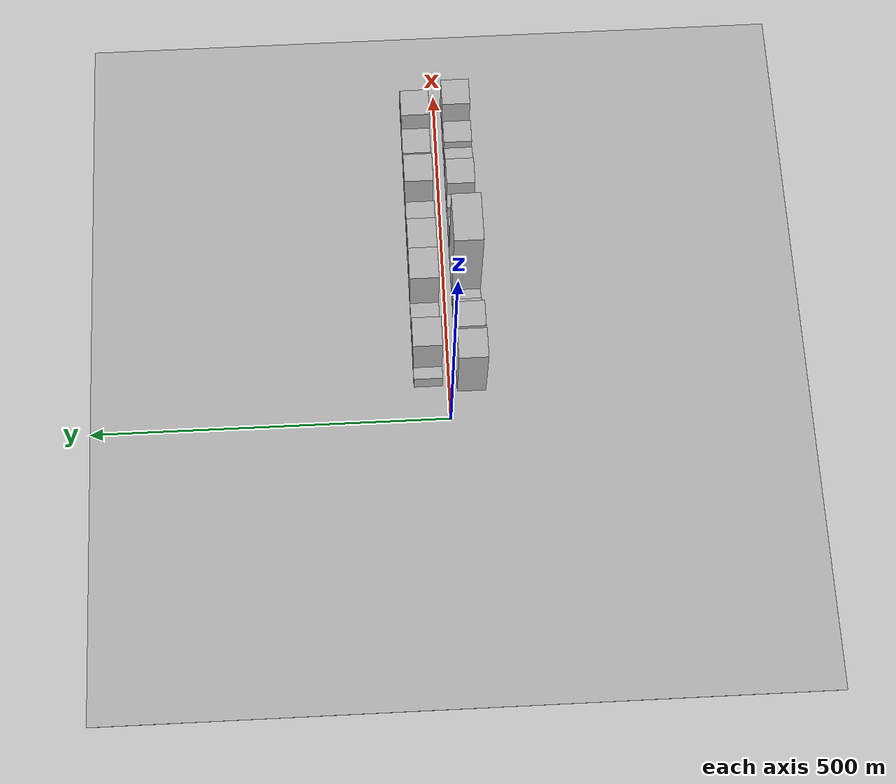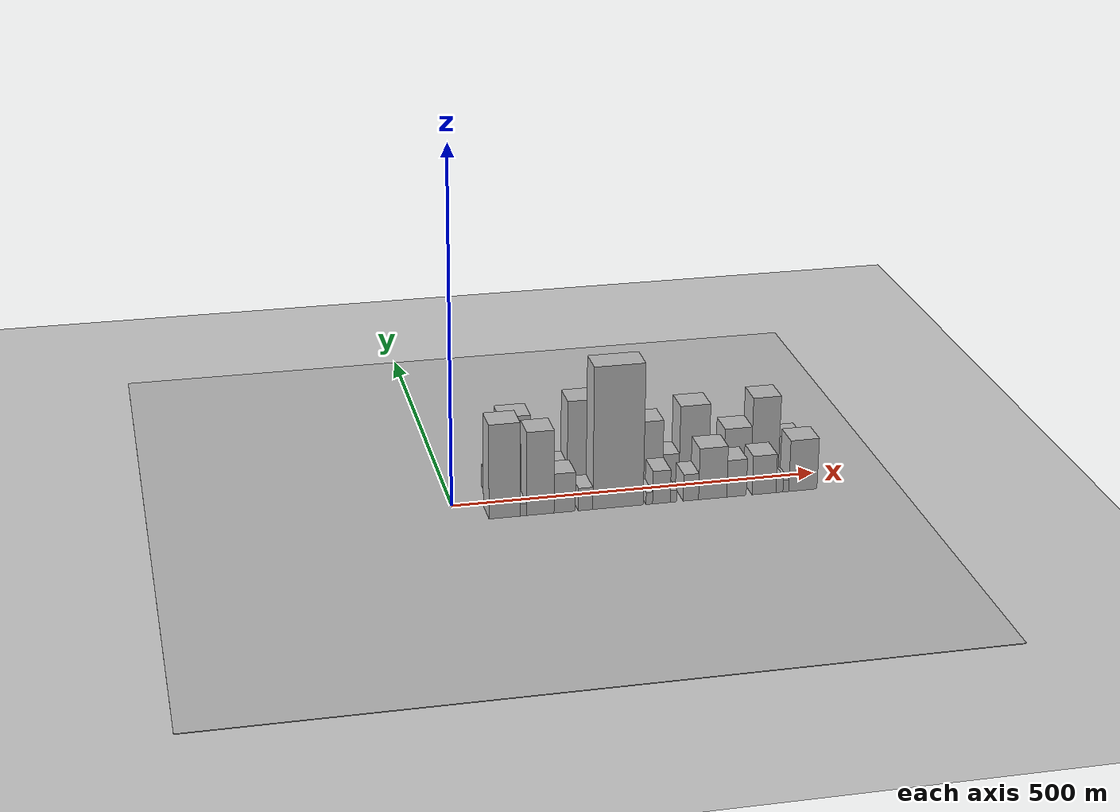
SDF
<?xml version="1.0" encoding="utf-8"?>

<sdf version="1.6">

   <world name="default">

      <gui fullscreen="0">

         <camera name="user_camera">

            <pose>-15 0 4.57585 0 0 0</pose>

            <view_controller>orbit</view_controller>

         </camera>

      </gui>

      <scene>

         <sky>

           <clouds>

             <speed>12</speed>

           </clouds>

         </sky>

         <ambient>0.4 0.4 0.4 1</ambient>

         <background>0.7 0.7 0.7 1</background>

         <shadows>1</shadows>

      </scene>

      <gravity>0 0 -9.8066</gravity>

      <magnetic_field>6e-06 2.3e-05 -4.2e-05</magnetic_field>

      <physics default="0" name="default_physics" type="ode">

         <ode>

            <solver>

               <type>quick</type>

               <iters>10</iters>

               <sor>1.0</sor>

               <use_dynamic_moi_rescaling>0</use_dynamic_moi_rescaling>

            </solver>

            <constraints>

               <cfm>0</cfm>

               <erp>0.2</erp>

               <contact_max_correcting_vel>100</contact_max_correcting_vel>

               <contact_surface_layer>0.001</contact_surface_layer>

            </constraints>

         </ode>

         <max_step_size>0.004</max_step_size>

         <real_time_factor>1</real_time_factor>

         <real_time_update_rate>250</real_time_update_rate>

      </physics>

      <light name="sun" type="directional">

         <cast_shadows>1</cast_shadows>

         <pose>0 0 10 0 0 0</pose>

         <diffuse>0.8 0.8 0.8 1</diffuse>

         <specular>0.2 0.2 0.2 1</specular>

         <attenuation>

            <range>1000</range>

            <constant>0.9</constant>

            <linear>0.01</linear>

            <quadratic>0.001</quadratic>

         </attenuation>

         <direction>-0.5 0.1 -0.9</direction>

      </light>

      <include>

         <name>ground_plane_1</name>

         <uri>model://HANNAS_ground_plane</uri>

         <pose>0 0 0  0 0 0</pose>

      </include>

      <include>

         <name>ground_plane_2</name>

         <uri>model://HANNAS_ground_plane</uri>

         <pose>100 0 0  0 0 0</pose>

      </include>

      <model name="building_1">

         <static>1</static>

         <pose frame="">57.5743 30.0000 0 0.000000 0.000000 1.570796</pose>

         <link name="link">

            <pose frame="">0 0 16.50 0 0 0</pose>

            <collision name="collision">

               <geometry>

                  <box>

                     <size>40.0000 17.1486 33.0000</size>

                  </box>

               </geometry>

               <max_contacts>10</max_contacts>

               <surface>

                  <contact>

                     <ode/>

                  </contact>

                  <bounce/>

                  <friction>

                     <torsional>

                        <ode/>

                     </torsional>

                     <ode/>

                  </friction>

               </surface>

            </collision>

            <visual name="visual">

               <cast_shadows>0</cast_shadows>

               <geometry>

                  <box>

                     <size>40.0000 17.1486 33.0000</size>

                  </box>

               </geometry>

               <material>

                  <script>

                     <uri>model://HANNAS_wall/materials/scripts</uri>

                     <uri>model://HANNAS_wall/materials/textures</uri>

                     <name>vrc/HANNAS_wall</name>

                  </script>

               </material>

            </visual>

            <self_collide>0</self_collide>

            <enable_wind>0</enable_wind>

            <kinematic>0</kinematic>

         </link>

      </model>

      <model name="building_2">

         <static>1</static>

         <pose frame="">86.8567 30.0000 0 0.000000 0.000000 1.570796</pose>

         <link name="link">

            <pose frame="">0 0 58.50 0 0 0</pose>

            <collision name="collision">

               <geometry>

                  <box>

                     <size>40.0000 41.4161 117.0000</size>

                  </box>

               </geometry>

               <max_contacts>10</max_contacts>

               <surface>

                  <contact>

                     <ode/>

                  </contact>

                  <bounce/>

                  <friction>

                     <torsional>

                        <ode/>

                     </torsional>

                     <ode/>

                  </friction>

               </surface>

            </collision>

            <visual name="visual">

               <cast_shadows>0</cast_shadows>

               <geometry>

                  <box>

                     <size>40.0000 41.4161 117.0000</size>

                  </box>

               </geometry>

               <material>

                  <script>

                     <uri>model://HANNAS_wall/materials/scripts</uri>

                     <uri>model://HANNAS_wall/materials/textures</uri>

                     <name>vrc/HANNAS_wall</name>

                  </script>

               </material>

            </visual>

            <self_collide>0</self_collide>

            <enable_wind>0</enable_wind>

            <kinematic>0</kinematic>

         </link>

      </model>

      <model name="building_3">

         <static>1</static>

         <pose frame="">123.7506 30.0000 0 0.000000 0.000000 1.570796</pose>

         <link name="link">

            <pose frame="">0 0 18.00 0 0 0</pose>

            <collision name="collision">

               <geometry>

                  <box>

                     <size>40.0000 20.3717 36.0000</size>

                  </box>

               </geometry>

               <max_contacts>10</max_contacts>

               <surface>

                  <contact>

                     <ode/>

                  </contact>

                  <bounce/>

                  <friction>

                     <torsional>

                        <ode/>

                     </torsional>

                     <ode/>

                  </friction>

               </surface>

            </collision>

            <visual name="visual">

               <cast_shadows>0</cast_shadows>

               <geometry>

                  <box>

                     <size>40.0000 20.3717 36.0000</size>

                  </box>

               </geometry>

               <material>

                  <script>

                     <uri>model://HANNAS_wall/materials/scripts</uri>

                     <uri>model://HANNAS_wall/materials/textures</uri>

                     <name>vrc/HANNAS_wall</name>

                  </script>

               </material>

            </visual>

            <self_collide>0</self_collide>

            <enable_wind>0</enable_wind>

            <kinematic>0</kinematic>

         </link>

      </model>

      <model name="building_4">

         <static>1</static>

         <pose frame="">146.0115 30.0000 0 0.000000 0.000000 1.570796</pose>

         <link name="link">

            <pose frame="">0 0 21.00 0 0 0</pose>

            <collision name="collision">

               <geometry>

                  <box>

                     <size>40.0000 24.1501 42.0000</size>

                  </box>

               </geometry>

               <max_contacts>10</max_contacts>

               <surface>

                  <contact>

                     <ode/>

                  </contact>

                  <bounce/>

                  <friction>

                     <torsional>

                        <ode/>

                     </torsional>

                     <ode/>

                  </friction>

               </surface>

            </collision>

            <visual name="visual">

               <cast_shadows>0</cast_shadows>

               <geometry>

                  <box>

                     <size>40.0000 24.1501 42.0000</size>

                  </box>

               </geometry>

               <material>

                  <script>

                     <uri>model://HANNAS_wall/materials/scripts</uri>

                     <uri>model://HANNAS_wall/materials/textures</uri>

                     <name>vrc/HANNAS_wall</name>

                  </script>

               </material>

            </visual>

            <self_collide>0</self_collide>

            <enable_wind>0</enable_wind>

            <kinematic>0</kinematic>

         </link>

      </model>

      <model name="building_5">

         <static>1</static>

         <pose frame="">180.6742 30.0000 0 0.000000 0.000000 1.570796</pose>

         <link name="link">

            <pose frame="">0 0 66.00 0 0 0</pose>

            <collision name="collision">

               <geometry>

                  <box>

                     <size>40.0000 45.1751 132.0000</size>

                  </box>

               </geometry>

               <max_contacts>10</max_contacts>

               <surface>

                  <contact>

                     <ode/>

                  </contact>

                  <bounce/>

                  <friction>

                     <torsional>

                        <ode/>

                     </torsional>

                     <ode/>

                  </friction>

               </surface>

            </collision>

            <visual name="visual">

               <cast_shadows>0</cast_shadows>

               <geometry>

                  <box>

                     <size>40.0000 45.1751 132.0000</size>

                  </box>

               </geometry>

               <material>

                  <script>

                     <uri>model://HANNAS_wall/materials/scripts</uri>

                     <uri>model://HANNAS_wall/materials/textures</uri>

                     <name>vrc/HANNAS_wall</name>

                  </script>

               </material>

            </visual>

            <self_collide>0</self_collide>

            <enable_wind>0</enable_wind>

            <kinematic>0</kinematic>

         </link>

      </model>

      <model name="building_6">

         <static>1</static>

         <pose frame="">226.4254 30.0000 0 0.000000 0.000000 1.570796</pose>

         <link name="link">

            <pose frame="">0 0 63.00 0 0 0</pose>

            <collision name="collision">

               <geometry>

                  <box>

                     <size>40.0000 46.3274 126.0000</size>

                  </box>

               </geometry>

               <max_contacts>10</max_contacts>

               <surface>

                  <contact>

                     <ode/>

                  </contact>

                  <bounce/>

                  <friction>

                     <torsional>

                        <ode/>

                     </torsional>

                     <ode/>

                  </friction>

               </surface>

            </collision>

            <visual name="visual">

               <cast_shadows>0</cast_shadows>

               <geometry>

                  <box>

                     <size>40.0000 46.3274 126.0000</size>

                  </box>

               </geometry>

               <material>

                  <script>

                     <uri>model://HANNAS_wall/materials/scripts</uri>

                     <uri>model://HANNAS_wall/materials/textures</uri>

                     <name>vrc/HANNAS_wall</name>

                  </script>

               </material>

            </visual>

            <self_collide>0</self_collide>

            <enable_wind>0</enable_wind>

            <kinematic>0</kinematic>

         </link>

      </model>

      <model name="building_7">

         <static>1</static>

         <pose frame="">271.7605 30.0000 0 0.000000 0.000000 1.570796</pose>

         <link name="link">

            <pose frame="">0 0 46.50 0 0 0</pose>

            <collision name="collision">

               <geometry>

                  <box>

                     <size>40.0000 36.3428 93.0000</size>

                  </box>

               </geometry>

               <max_contacts>10</max_contacts>

               <surface>

                  <contact>

                     <ode/>

                  </contact>

                  <bounce/>

                  <friction>

                     <torsional>

                        <ode/>

                     </torsional>

                     <ode/>

                  </friction>

               </surface>

            </collision>

            <visual name="visual">

               <cast_shadows>0</cast_shadows>

               <geometry>

                  <box>

                     <size>40.0000 36.3428 93.0000</size>

                  </box>

               </geometry>

               <material>

                  <script>

                     <uri>model://HANNAS_wall/materials/scripts</uri>

                     <uri>model://HANNAS_wall/materials/textures</uri>

                     <name>vrc/HANNAS_wall</name>

                  </script>

               </material>

            </visual>

            <self_collide>0</self_collide>

            <enable_wind>0</enable_wind>

            <kinematic>0</kinematic>

         </link>

      </model>

      <model name="building_8">

         <static>1</static>

         <pose frame="">301.4046 30.0000 0 0.000000 0.000000 1.570796</pose>

         <link name="link">

            <pose frame="">0 0 21.00 0 0 0</pose>

            <collision name="collision">

               <geometry>

                  <box>

                     <size>40.0000 22.9454 42.0000</size>

                  </box>

               </geometry>

               <max_contacts>10</max_contacts>

               <surface>

                  <contact>

                     <ode/>

                  </contact>

                  <bounce/>

                  <friction>

                     <torsional>

                        <ode/>

                     </torsional>

                     <ode/>

                  </friction>

               </surface>

            </collision>

            <visual name="visual">

               <cast_shadows>0</cast_shadows>

               <geometry>

                  <box>

                     <size>40.0000 22.9454 42.0000</size>

                  </box>

               </geometry>

               <material>

                  <script>

                     <uri>model://HANNAS_wall/materials/scripts</uri>

                     <uri>model://HANNAS_wall/materials/textures</uri>

                     <name>vrc/HANNAS_wall</name>

                  </script>

               </material>

            </visual>

            <self_collide>0</self_collide>

            <enable_wind>0</enable_wind>

            <kinematic>0</kinematic>

         </link>

      </model>

      <model name="building_9">

         <static>1</static>

         <pose frame="">333.6555 30.0000 0 0.000000 0.000000 1.570796</pose>

         <link name="link">

            <pose frame="">0 0 55.50 0 0 0</pose>

            <collision name="collision">

               <geometry>

                  <box>

                     <size>40.0000 41.5563 111.0000</size>

                  </box>

               </geometry>

               <max_contacts>10</max_contacts>

               <surface>

                  <contact>

                     <ode/>

                  </contact>

                  <bounce/>

                  <friction>

                     <torsional>

                        <ode/>

                     </torsional>

                     <ode/>

                  </friction>

               </surface>

            </collision>

            <visual name="visual">

               <cast_shadows>0</cast_shadows>

               <geometry>

                  <box>

                     <size>40.0000 41.5563 111.0000</size>

                  </box>

               </geometry>

               <material>

                  <script>

                     <uri>model://HANNAS_wall/materials/scripts</uri>

                     <uri>model://HANNAS_wall/materials/textures</uri>

                     <name>vrc/HANNAS_wall</name>

                  </script>

               </material>

            </visual>

            <self_collide>0</self_collide>

            <enable_wind>0</enable_wind>

            <kinematic>0</kinematic>

         </link>

      </model>

      <model name="building_10">

         <static>1</static>

         <pose frame="">366.5314 30.0000 0 0.000000 0.000000 1.570796</pose>

         <link name="link">

            <pose frame="">0 0 16.50 0 0 0</pose>

            <collision name="collision">

               <geometry>

                  <box>

                     <size>40.0000 18.1955 33.0000</size>

                  </box>

               </geometry>

               <max_contacts>10</max_contacts>

               <surface>

                  <contact>

                     <ode/>

                  </contact>

                  <bounce/>

                  <friction>

                     <torsional>

                        <ode/>

                     </torsional>

                     <ode/>

                  </friction>

               </surface>

            </collision>

            <visual name="visual">

               <cast_shadows>0</cast_shadows>

               <geometry>

                  <box>

                     <size>40.0000 18.1955 33.0000</size>

                  </box>

               </geometry>

               <material>

                  <script>

                     <uri>model://HANNAS_wall/materials/scripts</uri>

                     <uri>model://HANNAS_wall/materials/textures</uri>

                     <name>vrc/HANNAS_wall</name>

                  </script>

               </material>

            </visual>

            <self_collide>0</self_collide>

            <enable_wind>0</enable_wind>

            <kinematic>0</kinematic>

         </link>

      </model>

      <model name="building_11">

         <static>1</static>

         <pose frame="">394.8095 30.0000 0 0.000000 0.000000 1.570796</pose>

         <link name="link">

            <pose frame="">0 0 36.00 0 0 0</pose>

            <collision name="collision">

               <geometry>

                  <box>

                     <size>40.0000 38.3607 72.0000</size>

                  </box>

               </geometry>

               <max_contacts>10</max_contacts>

               <surface>

                  <contact>

                     <ode/>

                  </contact>

                  <bounce/>

                  <friction>

                     <torsional>

                        <ode/>

                     </torsional>

                     <ode/>

                  </friction>

               </surface>

            </collision>

            <visual name="visual">

               <cast_shadows>0</cast_shadows>

               <geometry>

                  <box>

                     <size>40.0000 38.3607 72.0000</size>

                  </box>

               </geometry>

               <material>

                  <script>

                     <uri>model://HANNAS_wall/materials/scripts</uri>

                     <uri>model://HANNAS_wall/materials/textures</uri>

                     <name>vrc/HANNAS_wall</name>

                  </script>

               </material>

            </visual>

            <self_collide>0</self_collide>

            <enable_wind>0</enable_wind>

            <kinematic>0</kinematic>

         </link>

      </model>

      <model name="building_12">

         <static>1</static>

         <pose frame="">433.4599 30.0000 0 0.000000 0.000000 1.570796</pose>

         <link name="link">

            <pose frame="">0 0 57.00 0 0 0</pose>

            <collision name="collision">

               <geometry>

                  <box>

                     <size>40.0000 38.9402 114.0000</size>

                  </box>

               </geometry>

               <max_contacts>10</max_contacts>

               <surface>

                  <contact>

                     <ode/>

                  </contact>

                  <bounce/>

                  <friction>

                     <torsional>

                        <ode/>

                     </torsional>

                     <ode/>

                  </friction>

               </surface>

            </collision>

            <visual name="visual">

               <cast_shadows>0</cast_shadows>

               <geometry>

                  <box>

                     <size>40.0000 38.9402 114.0000</size>

                  </box>

               </geometry>

               <material>

                  <script>

                     <uri>model://HANNAS_wall/materials/scripts</uri>

                     <uri>model://HANNAS_wall/materials/textures</uri>

                     <name>vrc/HANNAS_wall</name>

                  </script>

               </material>

            </visual>

            <self_collide>0</self_collide>

            <enable_wind>0</enable_wind>

            <kinematic>0</kinematic>

         </link>

      </model>

      <model name="building_13">

         <static>1</static>

         <pose frame="">468.7056 30.0000 0 0.000000 0.000000 1.570796</pose>

         <link name="link">

            <pose frame="">0 0 27.00 0 0 0</pose>

            <collision name="collision">

               <geometry>

                  <box>

                     <size>40.0000 31.5512 54.0000</size>

                  </box>

               </geometry>

               <max_contacts>10</max_contacts>

               <surface>

                  <contact>

                     <ode/>

                  </contact>

                  <bounce/>

                  <friction>

                     <torsional>

                        <ode/>

                     </torsional>

                     <ode/>

                  </friction>

               </surface>

            </collision>

            <visual name="visual">

               <cast_shadows>0</cast_shadows>

               <geometry>

                  <box>

                     <size>40.0000 31.5512 54.0000</size>

                  </box>

               </geometry>

               <material>

                  <script>

                     <uri>model://HANNAS_wall/materials/scripts</uri>

                     <uri>model://HANNAS_wall/materials/textures</uri>

                     <name>vrc/HANNAS_wall</name>

                  </script>

               </material>

            </visual>

            <self_collide>0</self_collide>

            <enable_wind>0</enable_wind>

            <kinematic>0</kinematic>

         </link>

      </model>

      <model name="building_14">

         <static>1</static>

         <pose frame="">60.8703 -30.0000 0 0.000000 0.000000 1.570796</pose>

         <link name="link">

            <pose frame="">0 0 67.50 0 0 0</pose>

            <collision name="collision">

               <geometry>

                  <box>

                     <size>40.0000 41.7405 135.0000</size>

                  </box>

               </geometry>

               <max_contacts>10</max_contacts>

               <surface>

                  <contact>

                     <ode/>

                  </contact>

                  <bounce/>

                  <friction>

                     <torsional>

                        <ode/>

                     </torsional>

                     <ode/>

                  </friction>

               </surface>

            </collision>

            <visual name="visual">

               <cast_shadows>0</cast_shadows>

               <geometry>

                  <box>

                     <size>40.0000 41.7405 135.0000</size>

                  </box>

               </geometry>

               <material>

                  <script>

                     <uri>model://HANNAS_wall/materials/scripts</uri>

                     <uri>model://HANNAS_wall/materials/textures</uri>

                     <name>vrc/HANNAS_wall</name>

                  </script>

               </material>

            </visual>

            <self_collide>0</self_collide>

            <enable_wind>0</enable_wind>

            <kinematic>0</kinematic>

         </link>

      </model>

      <model name="building_15">

         <static>1</static>

         <pose frame="">86.0809 -30.0000 0 0.000000 0.000000 1.570796</pose>

         <link name="link">

            <pose frame="">0 0 9.00 0 0 0</pose>

            <collision name="collision">

               <geometry>

                  <box>

                     <size>40.0000 8.6806 18.0000</size>

                  </box>

               </geometry>

               <max_contacts>10</max_contacts>

               <surface>

                  <contact>

                     <ode/>

                  </contact>

                  <bounce/>

                  <friction>

                     <torsional>

                        <ode/>

                     </torsional>

                     <ode/>

                  </friction>

               </surface>

            </collision>

            <visual name="visual">

               <cast_shadows>0</cast_shadows>

               <geometry>

                  <box>

                     <size>40.0000 8.6806 18.0000</size>

                  </box>

               </geometry>

               <material>

                  <script>

                     <uri>model://HANNAS_wall/materials/scripts</uri>

                     <uri>model://HANNAS_wall/materials/textures</uri>

                     <name>vrc/HANNAS_wall</name>

                  </script>

               </material>

            </visual>

            <self_collide>0</self_collide>

            <enable_wind>0</enable_wind>

            <kinematic>0</kinematic>

         </link>

      </model>

      <model name="building_16">

         <static>1</static>

         <pose frame="">108.7039 -30.0000 0 0.000000 0.000000 1.570796</pose>

         <link name="link">

            <pose frame="">0 0 60.00 0 0 0</pose>

            <collision name="collision">

               <geometry>

                  <box>

                     <size>40.0000 36.5654 120.0000</size>

                  </box>

               </geometry>

               <max_contacts>10</max_contacts>

               <surface>

                  <contact>

                     <ode/>

                  </contact>

                  <bounce/>

                  <friction>

                     <torsional>

                        <ode/>

                     </torsional>

                     <ode/>

                  </friction>

               </surface>

            </collision>

            <visual name="visual">

               <cast_shadows>0</cast_shadows>

               <geometry>

                  <box>

                     <size>40.0000 36.5654 120.0000</size>

                  </box>

               </geometry>

               <material>

                  <script>

                     <uri>model://HANNAS_wall/materials/scripts</uri>

                     <uri>model://HANNAS_wall/materials/textures</uri>

                     <name>vrc/HANNAS_wall</name>

                  </script>

               </material>

            </visual>

            <self_collide>0</self_collide>

            <enable_wind>0</enable_wind>

            <kinematic>0</kinematic>

         </link>

      </model>

      <model name="building_17">

         <static>1</static>

         <pose frame="">141.3381 -30.0000 0 0.000000 0.000000 1.570796</pose>

         <link name="link">

            <pose frame="">0 0 28.50 0 0 0</pose>

            <collision name="collision">

               <geometry>

                  <box>

                     <size>40.0000 28.7029 57.0000</size>

                  </box>

               </geometry>

               <max_contacts>10</max_contacts>

               <surface>

                  <contact>

                     <ode/>

                  </contact>

                  <bounce/>

                  <friction>

                     <torsional>

                        <ode/>

                     </torsional>

                     <ode/>

                  </friction>

               </surface>

            </collision>

            <visual name="visual">

               <cast_shadows>0</cast_shadows>

               <geometry>

                  <box>

                     <size>40.0000 28.7029 57.0000</size>

                  </box>

               </geometry>

               <material>

                  <script>

                     <uri>model://HANNAS_wall/materials/scripts</uri>

                     <uri>model://HANNAS_wall/materials/textures</uri>

                     <name>vrc/HANNAS_wall</name>

                  </script>

               </material>

            </visual>

            <self_collide>0</self_collide>

            <enable_wind>0</enable_wind>

            <kinematic>0</kinematic>

         </link>

      </model>

      <model name="building_18">

         <static>1</static>

         <pose frame="">169.5216 -30.0000 0 0.000000 0.000000 1.570796</pose>

         <link name="link">

            <pose frame="">0 0 16.50 0 0 0</pose>

            <collision name="collision">

               <geometry>

                  <box>

                     <size>40.0000 19.6641 33.0000</size>

                  </box>

               </geometry>

               <max_contacts>10</max_contacts>

               <surface>

                  <contact>

                     <ode/>

                  </contact>

                  <bounce/>

                  <friction>

                     <torsional>

                        <ode/>

                     </torsional>

                     <ode/>

                  </friction>

               </surface>

            </collision>

            <visual name="visual">

               <cast_shadows>0</cast_shadows>

               <geometry>

                  <box>

                     <size>40.0000 19.6641 33.0000</size>

                  </box>

               </geometry>

               <material>

                  <script>

                     <uri>model://HANNAS_wall/materials/scripts</uri>

                     <uri>model://HANNAS_wall/materials/textures</uri>

                     <name>vrc/HANNAS_wall</name>

                  </script>

               </material>

            </visual>

            <self_collide>0</self_collide>

            <enable_wind>0</enable_wind>

            <kinematic>0</kinematic>

         </link>

      </model>

      <model name="building_19">

         <static>1</static>

         <pose frame="">213.5829 -30.0000 0 0.000000 0.000000 1.570796</pose>

         <link name="link">

            <pose frame="">0 0 102.00 0 0 0</pose>

            <collision name="collision">

               <geometry>

                  <box>

                     <size>40.0000 68.4586 204.0000</size>

                  </box>

               </geometry>

               <max_contacts>10</max_contacts>

               <surface>

                  <contact>

                     <ode/>

                  </contact>

                  <bounce/>

                  <friction>

                     <torsional>

                        <ode/>

                     </torsional>

                     <ode/>

                  </friction>

               </surface>

            </collision>

            <visual name="visual">

               <cast_shadows>0</cast_shadows>

               <geometry>

                  <box>

                     <size>40.0000 68.4586 204.0000</size>

                  </box>

               </geometry>

               <material>

                  <script>

                     <uri>model://HANNAS_wall/materials/scripts</uri>

                     <uri>model://HANNAS_wall/materials/textures</uri>

                     <name>vrc/HANNAS_wall</name>

                  </script>

               </material>

            </visual>

            <self_collide>0</self_collide>

            <enable_wind>0</enable_wind>

            <kinematic>0</kinematic>

         </link>

      </model>

      <model name="building_20">

         <static>1</static>

         <pose frame="">256.2359 -30.0000 0 0.000000 0.000000 1.570796</pose>

         <link name="link">

            <pose frame="">0 0 9.00 0 0 0</pose>

            <collision name="collision">

               <geometry>

                  <box>

                     <size>40.0000 8.8475 18.0000</size>

                  </box>

               </geometry>

               <max_contacts>10</max_contacts>

               <surface>

                  <contact>

                     <ode/>

                  </contact>

                  <bounce/>

                  <friction>

                     <torsional>

                        <ode/>

                     </torsional>

                     <ode/>

                  </friction>

               </surface>

            </collision>

            <visual name="visual">

               <cast_shadows>0</cast_shadows>

               <geometry>

                  <box>

                     <size>40.0000 8.8475 18.0000</size>

                  </box>

               </geometry>

               <material>

                  <script>

                     <uri>model://HANNAS_wall/materials/scripts</uri>

                     <uri>model://HANNAS_wall/materials/textures</uri>

                     <name>vrc/HANNAS_wall</name>

                  </script>

               </material>

            </visual>

            <self_collide>0</self_collide>

            <enable_wind>0</enable_wind>

            <kinematic>0</kinematic>

         </link>

      </model>

      <model name="building_21">

         <static>1</static>

         <pose frame="">272.7714 -30.0000 0 0.000000 0.000000 1.570796</pose>

         <link name="link">

            <pose frame="">0 0 24.00 0 0 0</pose>

            <collision name="collision">

               <geometry>

                  <box>

                     <size>40.0000 24.2234 48.0000</size>

                  </box>

               </geometry>

               <max_contacts>10</max_contacts>

               <surface>

                  <contact>

                     <ode/>

                  </contact>

                  <bounce/>

                  <friction>

                     <torsional>

                        <ode/>

                     </torsional>

                     <ode/>

                  </friction>

               </surface>

            </collision>

            <visual name="visual">

               <cast_shadows>0</cast_shadows>

               <geometry>

                  <box>

                     <size>40.0000 24.2234 48.0000</size>

                  </box>

               </geometry>

               <material>

                  <script>

                     <uri>model://HANNAS_wall/materials/scripts</uri>

                     <uri>model://HANNAS_wall/materials/textures</uri>

                     <name>vrc/HANNAS_wall</name>

                  </script>

               </material>

            </visual>

            <self_collide>0</self_collide>

            <enable_wind>0</enable_wind>

            <kinematic>0</kinematic>

         </link>

      </model>

      <model name="building_22">

         <static>1</static>

         <pose frame="">289.2931 -30.0000 0 0.000000 0.000000 1.570796</pose>

         <link name="link">

            <pose frame="">0 0 9.00 0 0 0</pose>

            <collision name="collision">

               <geometry>

                  <box>

                     <size>40.0000 8.8200 18.0000</size>

                  </box>

               </geometry>

               <max_contacts>10</max_contacts>

               <surface>

                  <contact>

                     <ode/>

                  </contact>

                  <bounce/>

                  <friction>

                     <torsional>

                        <ode/>

                     </torsional>

                     <ode/>

                  </friction>

               </surface>

            </collision>

            <visual name="visual">

               <cast_shadows>0</cast_shadows>

               <geometry>

                  <box>

                     <size>40.0000 8.8200 18.0000</size>

                  </box>

               </geometry>

               <material>

                  <script>

                     <uri>model://HANNAS_wall/materials/scripts</uri>

                     <uri>model://HANNAS_wall/materials/textures</uri>

                     <name>vrc/HANNAS_wall</name>

                  </script>

               </material>

            </visual>

            <self_collide>0</self_collide>

            <enable_wind>0</enable_wind>

            <kinematic>0</kinematic>

         </link>

      </model>

      <model name="building_23">

         <static>1</static>

         <pose frame="">313.2520 -30.0000 0 0.000000 0.000000 1.570796</pose>

         <link name="link">

            <pose frame="">0 0 19.50 0 0 0</pose>

            <collision name="collision">

               <geometry>

                  <box>

                     <size>40.0000 21.0979 39.0000</size>

                  </box>

               </geometry>

               <max_contacts>10</max_contacts>

               <surface>

                  <contact>

                     <ode/>

                  </contact>

                  <bounce/>

                  <friction>

                     <torsional>

                        <ode/>

                     </torsional>

                     <ode/>

                  </friction>

               </surface>

            </collision>

            <visual name="visual">

               <cast_shadows>0</cast_shadows>

               <geometry>

                  <box>

                     <size>40.0000 21.0979 39.0000</size>

                  </box>

               </geometry>

               <material>

                  <script>

                     <uri>model://HANNAS_wall/materials/scripts</uri>

                     <uri>model://HANNAS_wall/materials/textures</uri>

                     <name>vrc/HANNAS_wall</name>

                  </script>

               </material>

            </visual>

            <self_collide>0</self_collide>

            <enable_wind>0</enable_wind>

            <kinematic>0</kinematic>

         </link>

      </model>

      <model name="building_24">

         <static>1</static>

         <pose frame="">343.1685 -30.0000 0 0.000000 0.000000 1.570796</pose>

         <link name="link">

            <pose frame="">0 0 37.50 0 0 0</pose>

            <collision name="collision">

               <geometry>

                  <box>

                     <size>40.0000 38.7351 75.0000</size>

                  </box>

               </geometry>

               <max_contacts>10</max_contacts>

               <surface>

                  <contact>

                     <ode/>

                  </contact>

                  <bounce/>

                  <friction>

                     <torsional>

                        <ode/>

                     </torsional>

                     <ode/>

                  </friction>

               </surface>

            </collision>

            <visual name="visual">

               <cast_shadows>0</cast_shadows>

               <geometry>

                  <box>

                     <size>40.0000 38.7351 75.0000</size>

                  </box>

               </geometry>

               <material>

                  <script>

                     <uri>model://HANNAS_wall/materials/scripts</uri>

                     <uri>model://HANNAS_wall/materials/textures</uri>

                     <name>vrc/HANNAS_wall</name>

                  </script>

               </material>

            </visual>

            <self_collide>0</self_collide>

            <enable_wind>0</enable_wind>

            <kinematic>0</kinematic>

         </link>

      </model>

      <model name="building_25">

         <static>1</static>

         <pose frame="">376.1402 -30.0000 0 0.000000 0.000000 1.570796</pose>

         <link name="link">

            <pose frame="">0 0 27.00 0 0 0</pose>

            <collision name="collision">

               <geometry>

                  <box>

                     <size>40.0000 27.2083 54.0000</size>

                  </box>

               </geometry>

               <max_contacts>10</max_contacts>

               <surface>

                  <contact>

                     <ode/>

                  </contact>

                  <bounce/>

                  <friction>

                     <torsional>

                        <ode/>

                     </torsional>

                     <ode/>

                  </friction>

               </surface>

            </collision>

            <visual name="visual">

               <cast_shadows>0</cast_shadows>

               <geometry>

                  <box>

                     <size>40.0000 27.2083 54.0000</size>

                  </box>

               </geometry>

               <material>

                  <script>

                     <uri>model://HANNAS_wall/materials/scripts</uri>

                     <uri>model://HANNAS_wall/materials/textures</uri>

                     <name>vrc/HANNAS_wall</name>

                  </script>

               </material>

            </visual>

            <self_collide>0</self_collide>

            <enable_wind>0</enable_wind>

            <kinematic>0</kinematic>

         </link>

      </model>

      <model name="building_26">

         <static>1</static>

         <pose frame="">414.3592 -30.0000 0 0.000000 0.000000 1.570796</pose>

         <link name="link">

            <pose frame="">0 0 28.50 0 0 0</pose>

            <collision name="collision">

               <geometry>

                  <box>

                     <size>40.0000 33.2297 57.0000</size>

                  </box>

               </geometry>

               <max_contacts>10</max_contacts>

               <surface>

                  <contact>

                     <ode/>

                  </contact>

                  <bounce/>

                  <friction>

                     <torsional>

                        <ode/>

                     </torsional>

                     <ode/>

                  </friction>

               </surface>

            </collision>

            <visual name="visual">

               <cast_shadows>0</cast_shadows>

               <geometry>

                  <box>

                     <size>40.0000 33.2297 57.0000</size>

                  </box>

               </geometry>

               <material>

                  <script>

                     <uri>model://HANNAS_wall/materials/scripts</uri>

                     <uri>model://HANNAS_wall/materials/textures</uri>

                     <name>vrc/HANNAS_wall</name>

                  </script>

               </material>

            </visual>

            <self_collide>0</self_collide>

            <enable_wind>0</enable_wind>

            <kinematic>0</kinematic>

         </link>

      </model>

      <model name="building_27">

         <static>1</static>

         <pose frame="">435.9061 -30.0000 0 0.000000 0.000000 1.570796</pose>

         <link name="link">

            <pose frame="">0 0 12.00 0 0 0</pose>

            <collision name="collision">

               <geometry>

                  <box>

                     <size>40.0000 9.8640 24.0000</size>

                  </box>

               </geometry>

               <max_contacts>10</max_contacts>

               <surface>

                  <contact>

                     <ode/>

                  </contact>

                  <bounce/>

                  <friction>

                     <torsional>

                        <ode/>

                     </torsional>

                     <ode/>

                  </friction>

               </surface>

            </collision>

            <visual name="visual">

               <cast_shadows>0</cast_shadows>

               <geometry>

                  <box>

                     <size>40.0000 9.8640 24.0000</size>

                  </box>

               </geometry>

               <material>

                  <script>

                     <uri>model://HANNAS_wall/materials/scripts</uri>

                     <uri>model://HANNAS_wall/materials/textures</uri>

                     <name>vrc/HANNAS_wall</name>

                  </script>

               </material>

            </visual>

            <self_collide>0</self_collide>

            <enable_wind>0</enable_wind>

            <kinematic>0</kinematic>

         </link>

      </model>

      <model name="building_28">

         <static>1</static>

         <pose frame="">444.8708 -30.0000 0 0.000000 0.000000 1.570796</pose>

         <link name="link">

            <pose frame="">0 0 9.00 0 0 0</pose>

            <collision name="collision">

               <geometry>

                  <box>

                     <size>40.0000 8.0654 18.0000</size>

                  </box>

               </geometry>

               <max_contacts>10</max_contacts>

               <surface>

                  <contact>

                     <ode/>

                  </contact>

                  <bounce/>

                  <friction>

                     <torsional>

                        <ode/>

                     </torsional>

                     <ode/>

                  </friction>

               </surface>

            </collision>

            <visual name="visual">

               <cast_shadows>0</cast_shadows>

               <geometry>

                  <box>

                     <size>40.0000 8.0654 18.0000</size>

                  </box>

               </geometry>

               <material>

                  <script>

                     <uri>model://HANNAS_wall/materials/scripts</uri>

                     <uri>model://HANNAS_wall/materials/textures</uri>

                     <name>vrc/HANNAS_wall</name>

                  </script>

               </material>

            </visual>

            <self_collide>0</self_collide>

            <enable_wind>0</enable_wind>

            <kinematic>0</kinematic>

         </link>

      </model>

      <model name="building_29">

         <static>1</static>

         <pose frame="">468.6943 -30.0000 0 0.000000 0.000000 1.570796</pose>

         <link name="link">

            <pose frame="">0 0 37.50 0 0 0</pose>

            <collision name="collision">

               <geometry>

                  <box>

                     <size>40.0000 39.5816 75.0000</size>

                  </box>

               </geometry>

               <max_contacts>10</max_contacts>

               <surface>

                  <contact>

                     <ode/>

                  </contact>

                  <bounce/>

                  <friction>

                     <torsional>

                        <ode/>

                     </torsional>

                     <ode/>

                  </friction>

               </surface>

            </collision>

            <visual name="visual">

               <cast_shadows>0</cast_shadows>

               <geometry>

                  <box>

                     <size>40.0000 39.5816 75.0000</size>

                  </box>

               </geometry>

               <material>

                  <script>

                     <uri>model://HANNAS_wall/materials/scripts</uri>

                     <uri>model://HANNAS_wall/materials/textures</uri>

                     <name>vrc/HANNAS_wall</name>

                  </script>

               </material>

            </visual>

            <self_collide>0</self_collide>

            <enable_wind>0</enable_wind>

            <kinematic>0</kinematic>

         </link>

      </model>

   </world>

</sdf>

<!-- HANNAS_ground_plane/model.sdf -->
<sdf version="1.4">
<model name="HANNAS_ground_plane">
  <static>true</static>
    <link name="link">
      <collision name="collision">
        <geometry>
          <plane>
            <normal>0 0 1</normal>
            <size>1000 1000</size>
          </plane>
        </geometry>
        <surface>
          <friction>
            <ode>
              <mu>100</mu>
              <mu2>50</mu2>
            </ode>
          </friction>
        </surface>
      </collision>
      <visual name="visual">
        <cast_shadows>false</cast_shadows>
        <geometry>
          <plane>
            <normal>0 0 1</normal>
            <size>1000 1000</size>
          </plane>
        </geometry>
        <material>
          <script>
            <uri>model://HANNAS_ground_plane/materials/scripts/HANNAS_ground_plane.material</uri>
	    <uri>model://HANNAS_ground_plane/materials/textures</uri>
            <name>HANNASGroundPlane/Image</name>
          </script>
        </material>
      </visual>
    </link>
  </model>
</sdf>
